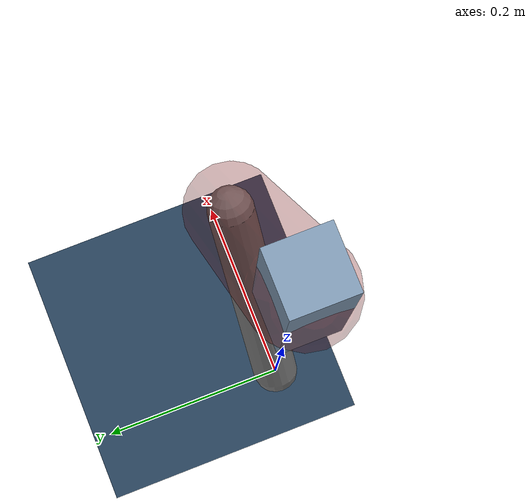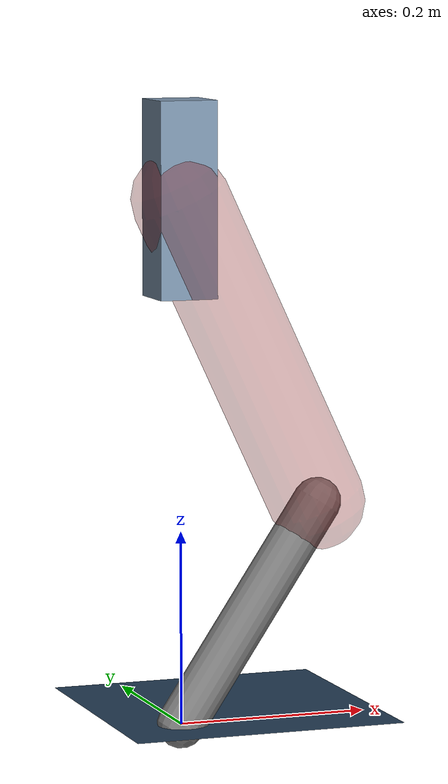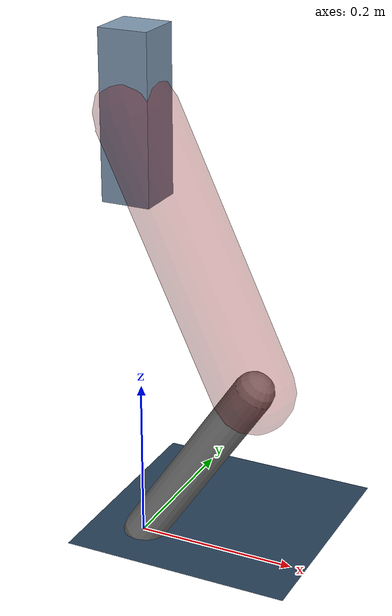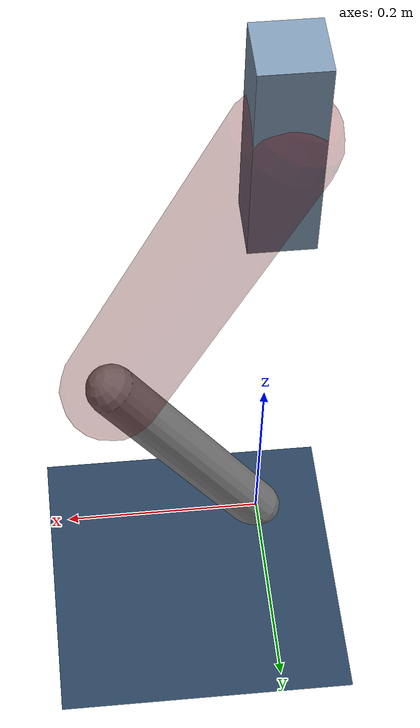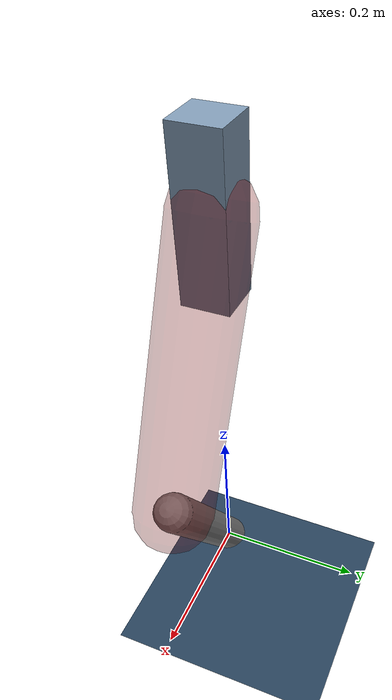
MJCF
<mujoco model="Hopper2D">
	<compiler inertiafromgeom="true" angle="radian" />
	<option timestep="0.001" integrator="implicit" cone="elliptic" solver="Newton" tolerance="1e-10" />

	<default>
		<geom contype="1" conaffinity="1" condim="3" friction="2 0.005 0.0001" solref="0.005 1" />
		<joint limited="true" damping="0.1" />
	</default>

	<asset>
		<texture name="skybox" type="skybox" builtin="gradient" rgb1=".4 .6 .8" rgb2="0 0 0" width="800" height="800" />
		<texture name="grid" type="2d" builtin="checker" rgb1=".1 .2 .3" rgb2=".2 .3 .4" width="300" height="300" mark="edge" markrgb=".2 .3 .4" />
		<material name="ground" texture="grid" texrepeat="1 1" texuniform="true" reflectance="0.1" />
		<material name="leg" rgba="0.5 0.6 0.7 1" />
	</asset>

	<worldbody>

		<geom name="floor" type="plane" size="5 5 0.25" material="ground" />

		<light directional="false" diffuse="0.8 0.8 0.8" specular="0.3 0.3 0.3" pos="0 0 2" dir="0 0 -1" />
		<light mode="targetbodycom" target="base" directional="false" diffuse="0.8 0.8 0.8" specular="0.3 0.3 0.3" pos="0 0 2" dir="0 0 -1" />

		<camera name="fixed" pos="0 -2 1" xyaxes="1 0 0 0 0 1" />
		<camera name="tracking" mode="trackcom" pos="0 -3 1" />

		<body name="root" pos="0 0 0.5408586690261541">
			<joint name="slide_x" type="slide" axis="1 0 0" range="-100 100" />
			<joint name="slide_z" type="slide" axis="0 0 1" range="0 10" />

			<body name="base" pos="0 0 0">
				<geom name="torso" type="box" size="0.03 0.03 0.1" mass="1.673" material="leg" />

				<body name="link1" pos="0 0 0" euler="0 1.1319572022473603 0">
					<joint type="hinge" axis="0 -1 0" pos="0 0 0" name="hinge1" limited="true" range="-3.14 3.14" stiffness="0" damping="0.1" />
					<geom name="thigh" type="capsule" fromto="0 0 0 0.349933804232586 0 0" size="0.05" rgba="0.5 0 0 0.3" mass="1.126514651851241" />

					<body name="link2" pos="0.349933804232586 0 0" euler="0 1.0246590245933542 0">
						<joint type="hinge" axis="0 -1 0" pos="0 0 0" name="hinge2" limited="true" range="-3.14 3.14" stiffness="0" damping="0.1" />
						<geom name="shank" type="capsule" fromto="0 0 0 0.26892316357614665 0 0" size="0.025" mass="0.45803853086091734" />

					</body>
				</body>
			</body>
		</body>
	</worldbody>

	<actuator>
		<motor name="torque1" joint="hinge1" ctrlrange="-42.17943817642253 42.17943817642253" ctrllimited="true" gear="1" />
		<motor name="torque2" joint="hinge2" ctrlrange="-22.801505849294806 22.801505849294806" ctrllimited="true" gear="1" />
	</actuator>
</mujoco>
